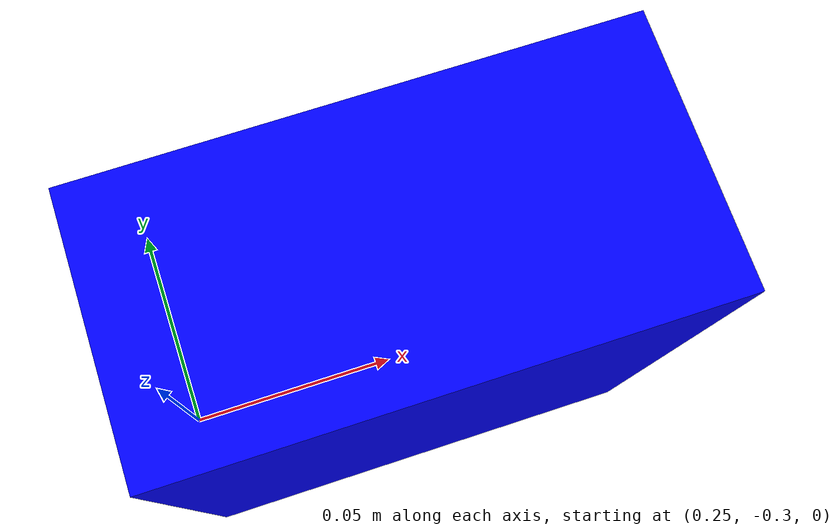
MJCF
<mujoco model="props">
  <worldbody>
    <body name="object" pos="0.3 -0.3 0.05">
      <freejoint/>
      <geom type="box" size="0.05 0.025 0.05" rgba="0 0 1 1"
            mass="1.0"
            condim="4"
            friction="6.0 0.2 0.001"
            solimp="0.99 0.99 0.01 0.5 2.0"
            solref="0.001 1.0"
            margin="0.001"/>
    </body>
  </worldbody>
</mujoco>
